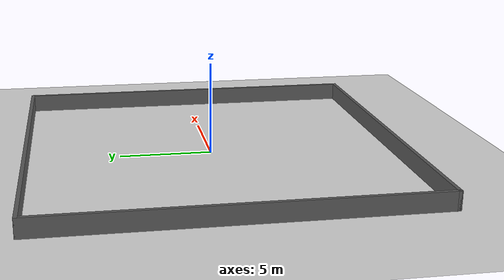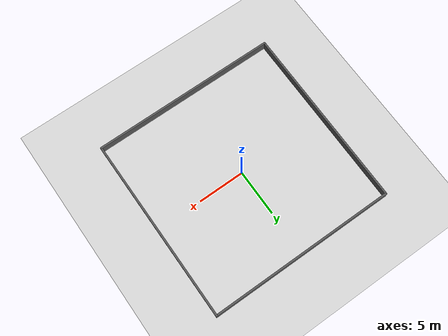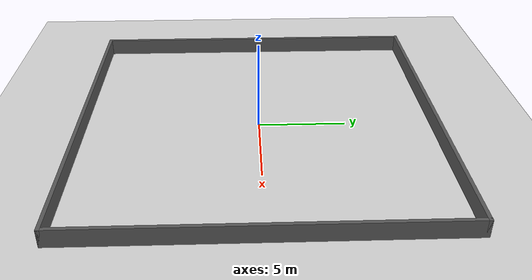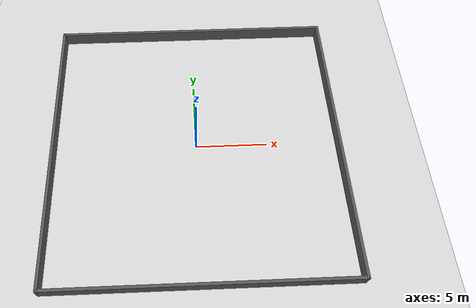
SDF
<?xml version="1.0"?>
<sdf version="1.8">
  <world name="test_world">

    <!-- Physics -->
    <physics name="default_physics" type="ignored">
      <max_step_size>0.001</max_step_size>
      <real_time_factor>1.0</real_time_factor>
    </physics>

        <!-- Core Gazebo Sim systems -->
    <plugin filename="gz-sim-physics-system" name="gz::sim::systems::Physics"/>
    <plugin filename="gz-sim-user-commands-system" name="gz::sim::systems::UserCommands"/>
    <plugin filename="gz-sim-scene-broadcaster-system" name="gz::sim::systems::SceneBroadcaster"/>
    <plugin filename="gz-sim-sensors-system" name="gz::sim::systems::Sensors">
      <render_engine>ogre2</render_engine>
    </plugin>

    <!-- Light -->
    <light type="directional" name="sun">
      <cast_shadows>true</cast_shadows>
      <pose>0 0 10 0 0 0</pose>
      <diffuse>0.8 0.8 0.8 1</diffuse>
      <specular>0.2 0.2 0.2 1</specular>
      <attenuation>
        <range>1000</range>
        <constant>0.9</constant>
        <linear>0.01</linear>
        <quadratic>0.001</quadratic>
      </attenuation>
      <direction>-0.5 0.1 -0.9</direction>
    </light>

    <!-- Ground plane -->
    <model name="ground_plane">
      <static>true</static>
      <link name="link">
        <collision name="collision">
          <geometry>
            <plane>
              <normal>0 0 1</normal>
              <size>30 30</size>
            </plane>
          </geometry>
        </collision>
        <visual name="visual">
          <geometry>
            <plane>
              <normal>0 0 1</normal>
              <size>30 30</size>
            </plane>
          </geometry>
          <material>
            <ambient>0.85 0.85 0.85 1</ambient>
            <diffuse>0.85 0.85 0.85 1</diffuse>
            <specular>0.2 0.2 0.2 1</specular>    <!-- was 0.85 -->
          </material>
        </visual>
      </link>
    </model>

    <!-- Boundary walls            -->
    <!-- Plot roughly spans x [-1, 9], y [-5, 4] -->

    <!-- Bottom wall -->
    <model name="wall_bottom">
      <static>true</static>
      <pose>0 -10 0.5 0 0 0</pose>
      <link name="link">
        <collision name="collision">
          <geometry>
            <box>
              <size>20.2 0.2 1.0</size>
            </box>
          </geometry>
        </collision>
        <visual name="visual">
          <geometry>
            <box>
              <size>20.2 0.2 1.0</size>
            </box>
          </geometry>
          <material>
            <ambient>0.35 0.35 0.35 1</ambient>   <!-- was 0.3 -->
            <diffuse>0.35 0.35 0.35 1</diffuse>   <!-- was 0.3 -->
            <specular>0.1 0.1 0.1 1</specular>
          </material>
        </visual>
      </link>
    </model>

    <!-- Top wall -->
    <model name="wall_top">
      <static>true</static>
      <pose>0 10 0.5 0 0 0</pose>
      <link name="link">
        <collision name="collision">
          <geometry>
            <box>
              <size>20.2 0.2 1.0</size>
            </box>
          </geometry>
        </collision>
        <visual name="visual">
          <geometry>
            <box>
              <size>20.2 0.2 1.0</size>
            </box>
          </geometry>
          <material>
            <ambient>0.35 0.35 0.35 1</ambient>   <!-- was 0.3 -->
            <diffuse>0.35 0.35 0.35 1</diffuse>   <!-- was 0.3 -->
            <specular>0.1 0.1 0.1 1</specular>
          </material>
        </visual>
      </link>
    </model>

    <!-- Left wall -->
    <model name="wall_left">
      <static>true</static>
      <pose>-10 0 0.5 0 0 0</pose>
      <link name="link">
        <collision name="collision">
          <geometry>
            <box>
              <size>0.2 20.2 1.0</size>
            </box>
          </geometry>
        </collision>
        <visual name="visual">
          <geometry>
            <box>
              <size>0.2 20.2 1.0</size>
            </box>
          </geometry>
          <material>
            <ambient>0.35 0.35 0.35 1</ambient>   <!-- was 0.3 -->
            <diffuse>0.35 0.35 0.35 1</diffuse>   <!-- was 0.3 -->
            <specular>0.1 0.1 0.1 1</specular>
          </material>
        </visual>
      </link>
    </model>

    <!-- Right wall -->
    <model name="wall_right">
      <static>true</static>
      <pose>10 0 0.5 0 0 0</pose>
      <link name="link">
        <collision name="collision">
          <geometry>
            <box>
              <size>0.2 20.2 1.0</size>
            </box>
          </geometry>
        </collision>
        <visual name="visual">
          <geometry>
            <box>
              <size>0.2 20.2 1.0</size>
            </box>
          </geometry>
          <material>
            <ambient>0.35 0.35 0.35 1</ambient>   <!-- was 0.3 -->
            <diffuse>0.35 0.35 0.35 1</diffuse>   <!-- was 0.3 -->
            <specular>0.1 0.1 0.1 1</specular>
          </material>
        </visual>
      </link>
    </model>

  </world>
</sdf>
